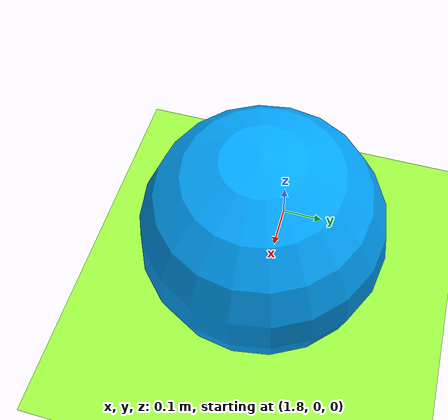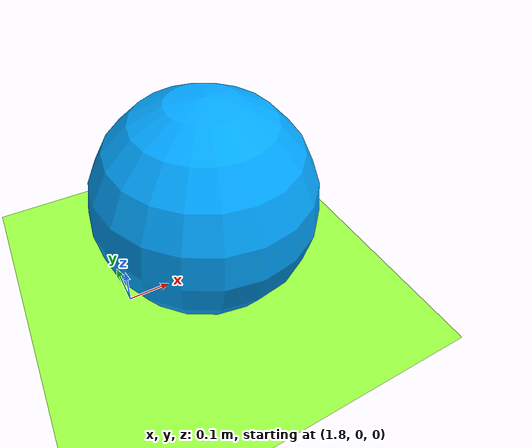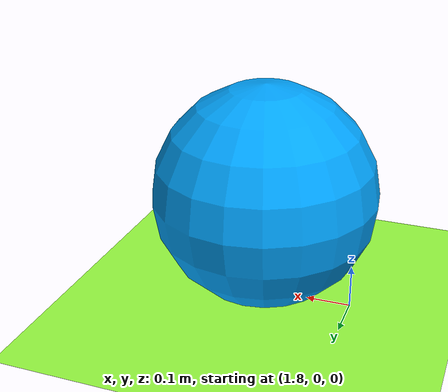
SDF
<?xml version="1.0" encoding="UTF-8"?>
<sdf version="1.9">
  <world name="lawn">
    <physics type="ode">
      <max_step_size>0.004</max_step_size>
      <real_time_factor>1.0</real_time_factor>
      <real_time_update_rate>250</real_time_update_rate>
    </physics>
    <plugin name="gz::sim::systems::Physics" filename="gz-sim-physics-system"/>
    <plugin name="gz::sim::systems::UserCommands" filename="gz-sim-user-commands-system"/>
    <plugin name="gz::sim::systems::SceneBroadcaster" filename="gz-sim-scene-broadcaster-system"/>
    <plugin name="gz::sim::systems::Contact" filename="gz-sim-contact-system"/>
    <plugin name="gz::sim::systems::Imu" filename="gz-sim-imu-system"/>
    <plugin name="gz::sim::systems::AirPressure" filename="gz-sim-air-pressure-system"/>
    <plugin name="gz::sim::systems::ApplyLinkWrench" filename="gz-sim-apply-link-wrench-system"/>
    <plugin name="gz::sim::systems::NavSat" filename="gz-sim-navsat-system"/>
    <plugin name="gz::sim::systems::Sensors" filename="gz-sim-sensors-system">
      <render_engine>ogre2</render_engine>
    </plugin>
    <gui fullscreen="false">
      <!-- 3D scene -->
      <plugin filename="MinimalScene" name="3D View">
        <gz-gui>
          <title>3D View</title>
          <property type="bool" key="showTitleBar">false</property>
          <property type="string" key="state">docked</property>
        </gz-gui>
        <engine>ogre2</engine>
        <scene>scene</scene>
        <ambient_light>0.4 0.4 0.4</ambient_light>
        <background_color>0.8 0.8 0.8</background_color>
        <camera_pose>-6 0 6 0 0.5 0</camera_pose>
        <camera_clip>
          <near>0.25</near>
          <far>25000</far>
        </camera_clip>
      </plugin>
      <!-- Plugins that add functionality to the scene -->
      <plugin filename="EntityContextMenuPlugin" name="Entity context menu">
        <gz-gui>
          <property key="state" type="string">floating</property>
          <property key="width" type="double">5</property>
          <property key="height" type="double">5</property>
          <property key="showTitleBar" type="bool">false</property>
        </gz-gui>
      </plugin>
      <plugin filename="GzSceneManager" name="Scene Manager">
        <gz-gui>
          <property key="resizable" type="bool">false</property>
          <property key="width" type="double">5</property>
          <property key="height" type="double">5</property>
          <property key="state" type="string">floating</property>
          <property key="showTitleBar" type="bool">false</property>
        </gz-gui>
      </plugin>
      <plugin filename="InteractiveViewControl" name="Interactive view control">
        <gz-gui>
          <property key="resizable" type="bool">false</property>
          <property key="width" type="double">5</property>
          <property key="height" type="double">5</property>
          <property key="state" type="string">floating</property>
          <property key="showTitleBar" type="bool">false</property>
        </gz-gui>
      </plugin>
      <plugin filename="CameraTracking" name="Camera Tracking">
        <gz-gui>
          <property key="resizable" type="bool">false</property>
          <property key="width" type="double">5</property>
          <property key="height" type="double">5</property>
          <property key="state" type="string">floating</property>
          <property key="showTitleBar" type="bool">false</property>
        </gz-gui>
      </plugin>
      <plugin filename="MarkerManager" name="Marker manager">
        <gz-gui>
          <property key="resizable" type="bool">false</property>
          <property key="width" type="double">5</property>
          <property key="height" type="double">5</property>
          <property key="state" type="string">floating</property>
          <property key="showTitleBar" type="bool">false</property>
        </gz-gui>
      </plugin>
      <plugin filename="SelectEntities" name="Select Entities">
        <gz-gui>
          <anchors target="Select entities">
            <line own="right" target="right"/>
            <line own="top" target="top"/>
          </anchors>
          <property key="resizable" type="bool">false</property>
          <property key="width" type="double">5</property>
          <property key="height" type="double">5</property>
          <property key="state" type="string">floating</property>
          <property key="showTitleBar" type="bool">false</property>
        </gz-gui>
      </plugin>
      <plugin filename="VisualizationCapabilities" name="Visualization Capabilities">
        <gz-gui>
          <property key="resizable" type="bool">false</property>
          <property key="width" type="double">5</property>
          <property key="height" type="double">5</property>
          <property key="state" type="string">floating</property>
          <property key="showTitleBar" type="bool">false</property>
        </gz-gui>
      </plugin>
      <plugin filename="Spawn" name="Spawn Entities">
        <gz-gui>
          <anchors target="Select entities">
            <line own="right" target="right"/>
            <line own="top" target="top"/>
          </anchors>
          <property key="resizable" type="bool">false</property>
          <property key="width" type="double">5</property>
          <property key="height" type="double">5</property>
          <property key="state" type="string">floating</property>
          <property key="showTitleBar" type="bool">false</property>
        </gz-gui>
      </plugin>
      <plugin name="World control" filename="WorldControl">
        <gz-gui>
          <title>World control</title>
          <property type="bool" key="showTitleBar">0</property>
          <property type="bool" key="resizable">0</property>
          <property type="double" key="height">72</property>
          <property type="double" key="width">121</property>
          <property type="double" key="z">1</property>
          <property type="string" key="state">floating</property>
          <anchors target="3D View">
            <line own="left" target="left"/>
            <line own="bottom" target="bottom"/>
          </anchors>
        </gz-gui>
        <play_pause>1</play_pause>
        <step>1</step>
        <start_paused>1</start_paused>
      </plugin>
      <plugin name="World stats" filename="WorldStats">
        <gz-gui>
          <title>World stats</title>
          <property type="bool" key="showTitleBar">0</property>
          <property type="bool" key="resizable">0</property>
          <property type="double" key="height">110</property>
          <property type="double" key="width">290</property>
          <property type="double" key="z">1</property>
          <property type="string" key="state">floating</property>
          <anchors target="3D View">
            <line own="right" target="right"/>
            <line own="bottom" target="bottom"/>
          </anchors>
        </gz-gui>
        <sim_time>1</sim_time>
        <real_time>1</real_time>
        <real_time_factor>1</real_time_factor>
        <iterations>1</iterations>
      </plugin>
      <plugin name="Entity tree" filename="EntityTree"/>
    </gui>
    <gravity>0 0 -9.8</gravity>
    <magnetic_field>6e-06 2.3e-05 -4.2e-05</magnetic_field>
    <atmosphere type="adiabatic"/>
    <scene>
      <sky>
        <clouds>
          <speed>12</speed>
        </clouds>
      </sky>
      <grid>true</grid>
      <ambient>0.5 0.5 0.5 0.3</ambient>
      <background>0.3 0.3 0.3 0.3</background>
      <shadows>true</shadows>
    </scene>
    <model name="ground_plane">
      <static>true</static>
      <link name="link">
        <collision name="collision">
          <geometry>
            <plane>
              <normal>0 0 1</normal>
              <size>1 1</size>
            </plane>
          </geometry>
          <surface>
            <friction>
              <ode>
                <mu>0.6</mu>
                <mu2>0.6</mu2>
              </ode>
            </friction>
            <bounce/>
            <contact>
              <collide_bitmask>65535</collide_bitmask>
              <ode>
                <min_depth>0.005</min_depth>
                <kp>1e8</kp>
              </ode>
            </contact>
          </surface>
        </collision>
        <visual name="visual">
          <cast_shadows>false</cast_shadows>
          <geometry>
            <plane>
              <normal>0 0 1</normal>
              <size>400 400</size>
            </plane>
          </geometry>
          <material>
            <diffuse>0.6 1.0 0.25 0.5</diffuse>
            <specular>0 0 0 0</specular>
            <emissive>0 0 0 0</emissive>
          </material>
        </visual>
        <pose>0 0 0 0 -0 0</pose>
        <inertial>
          <pose>0 0 0 0 -0 0</pose>
          <mass>1</mass>
          <inertia>
            <ixx>1</ixx>
            <ixy>0</ixy>
            <ixz>0</ixz>
            <iyy>1</iyy>
            <iyz>0</iyz>
            <izz>1</izz>
          </inertia>
        </inertial>
        <enable_wind>false</enable_wind>
      </link>
      <pose>0 0 0 0 -0 0</pose>
      <self_collide>false</self_collide>
    </model>
    <light name="sunUTC" type="directional">
      <pose>0 0 500 0 -0 0</pose>
      <cast_shadows>true</cast_shadows>
      <intensity>1</intensity>
      <direction>0.001 0.625 -0.78</direction>
      <diffuse>0.904 0.904 0.904 1</diffuse>
      <specular>0.271 0.271 0.271 1</specular>
      <attenuation>
        <range>2000</range>
        <linear>0</linear>
        <constant>1</constant>
        <quadratic>0</quadratic>
      </attenuation>
      <spot>
        <inner_angle>0</inner_angle>
        <outer_angle>0</outer_angle>
        <falloff>0</falloff>
      </spot>
    </light>
    <light type="directional" name="sun_2">
      <cast_shadows>true</cast_shadows>
      <pose>200 200 200 0 0 0</pose>
      <diffuse>0.5 0.5 0.5 0.3</diffuse>
      <specular>0.2 0.2 0.2 0.3</specular>
      <attenuation>
        <range>2000</range>
        <constant>1</constant>
        <linear>0</linear>
        <quadratic>0</quadratic>
      </attenuation>
      <direction>0.01 0.01 -0.9</direction>
    </light>
    <spherical_coordinates>
      <surface_model>EARTH_WGS84</surface_model>
      <world_frame_orientation>ENU</world_frame_orientation>
      <latitude_deg>47.397971057728974</latitude_deg>
      <longitude_deg> 8.546163739800146</longitude_deg>
      <elevation>0</elevation>
    </spherical_coordinates>
    <model name="blue_ball">
      <static>true</static>
      <link name="link">
        <pose>2 0 0.25 0 0 0</pose>
        <collision name="collision">
          <geometry>
            <sphere>
              <radius>0.25</radius>
            </sphere>
          </geometry>
        </collision>
        <visual name="visual">
          <geometry>
            <sphere>
              <radius>0.25</radius>
            </sphere>
          </geometry>
          <material>
            <ambient>0.0039 0.647 0.996 1</ambient>
            <diffuse>0.0039 0.647 0.996 1</diffuse>
            <specular>0.1 0.1 0.1 1</specular>
          </material>
        </visual>
        <inertial>
          <mass>0.1</mass>
          <inertia>
            <ixx>0.001</ixx>
            <iyy>0.001</iyy>
            <izz>0.001</izz>
            <ixy>0</ixy>
            <ixz>0</ixz>
            <iyz>0</iyz>
          </inertia>
        </inertial>
      </link>
    </model>

  </world>
</sdf>
